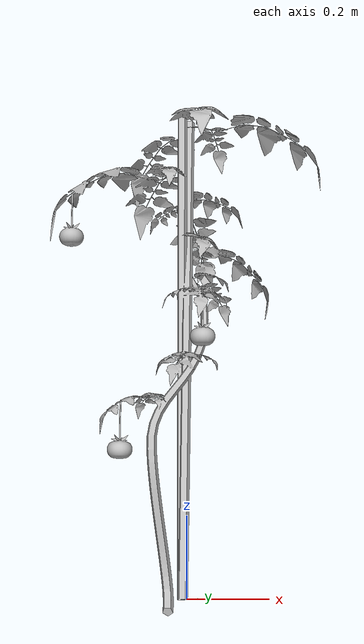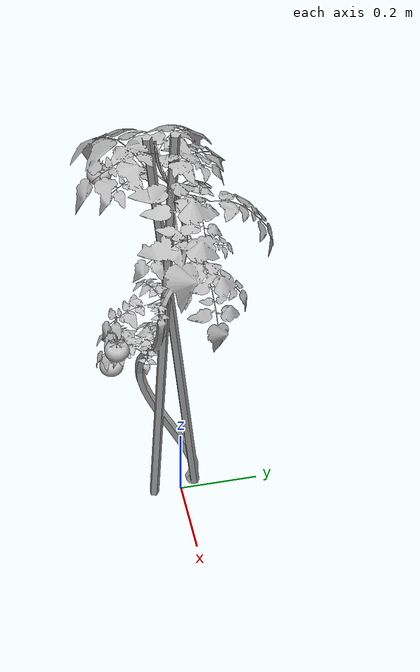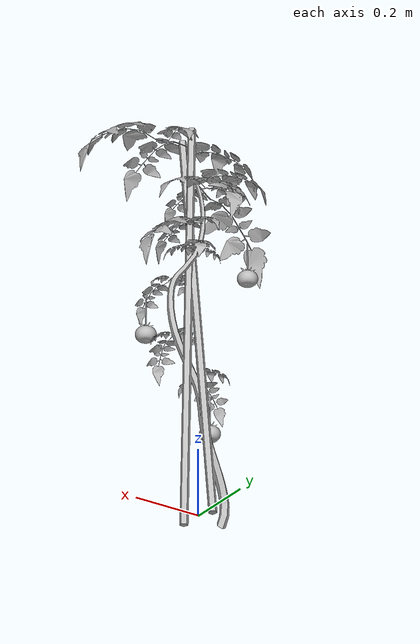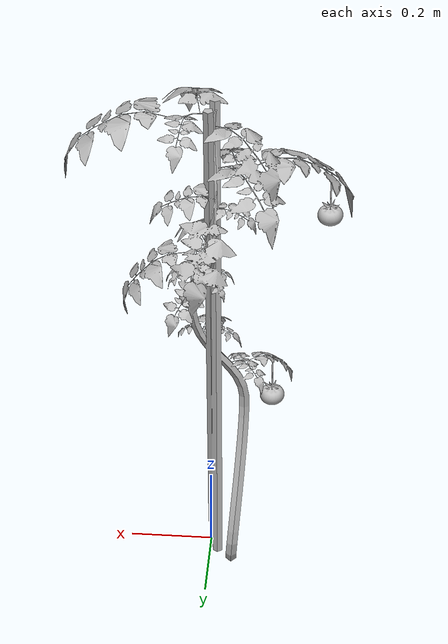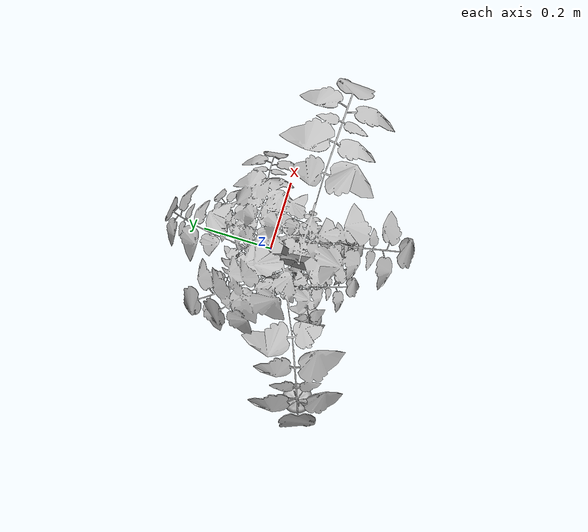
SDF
<?xml version="1.0"?>
<sdf version="1.6">
    <model name="task_2">
  <static>false</static>
      <link name="tomato_plant_link">

        <inertial>
          <pose>0 0 0 0 0 0</pose>
          <mass>20</mass>
          <inertia>
            <ixx>0.2006</ixx>
            <ixy>0</ixy>
            <ixz>0</ixz>
            <iyy>0.2006</iyy>
            <iyz>0</iyz>
            <izz>0.4</izz>
          </inertia>
        </inertial>

        <visual name="visual">
          <pose>0 0 0 0 0 0</pose>
          <geometry>
            <mesh><uri>model://tomato_plant/meshes/tomato_plant.obj</uri></mesh>
          </geometry>
        </visual>
        <collision name="collision">
          <pose>0 0 0.01 0 0 0</pose>
       <geometry>
          <cylinder>
            <radius>0.2</radius>
            <length>0.02</length>
          </cylinder>
        </geometry>
        </collision>
      </link>

<!-- tomato link -->

      <link name="t_link_2">
        <pose>0.062027 -0.170581 0.614534 0 0 0</pose>
        <inertial>
          <mass>0.001</mass>
          <inertia>
            <ixx>3.6e-03</ixx>
            <ixy>0</ixy>
            <ixz>0</ixz>
            <iyy>3.6e-03</iyy>
            <iyz>0</iyz>
            <izz>3.6e-03</izz>
          </inertia>
        </inertial>

      <surface>
        <friction>
          <ode>
            <mu>100000</mu>
            <mu2>100000</mu2>
          </ode>
        </friction>
      </surface>

        <collision name="collision">
          <geometry>
            <sphere><radius>0.02</radius></sphere>
          </geometry>
        </collision>
        <visual name="visual">
          <geometry>
            <mesh><uri>model://red_tomato/meshes/red_tomato.obj</uri></mesh>
          </geometry>
        </visual>
      </link>
      <joint name="t_joint_2" type="fixed">
        <parent>tomato_plant_link</parent>
        <child>t_link_2</child>
        <axis>
          <xyz>0 0 1</xyz>
          <use_parent_model_frame>true</use_parent_model_frame>
        </axis>
        <sensor name="force_torque" type="force_torque">
          <always_on>true</always_on>
          <update_rate>100</update_rate>
          <plugin name="breakable_2" filename="libBreakableJointPlugin.so">
            <breaking_force_N>10</breaking_force_N>
          </plugin>
        </sensor>
      </joint>

      <link name="t_link_7">
        <pose>-0.14 -0.15 0.35 0 0 0</pose>
        <inertial>
          <mass>0.001</mass>
          <inertia>
            <ixx>3.6e-03</ixx>
            <ixy>0</ixy>
            <ixz>0</ixz>
            <iyy>3.6e-03</iyy>
            <iyz>0</iyz>
            <izz>3.6e-03</izz>
          </inertia>
        </inertial>

      <surface>
        <friction>
          <ode>
            <mu>100000</mu>
            <mu2>100000</mu2>
          </ode>
        </friction>
      </surface>
        <collision name="collision">
          <geometry>
            <sphere><radius>0.02</radius></sphere>
          </geometry>
        </collision>
        <visual name="visual">
          <geometry>
            <mesh><uri>model://red_tomato/meshes/red_tomato.obj</uri></mesh>
          </geometry>
        </visual>
      </link>
      <joint name="t_joint_7" type="fixed">
        <parent>tomato_plant_link</parent>
        <child>t_link_7</child>
        <axis>
          <xyz>0 0 1</xyz>
          <use_parent_model_frame>true</use_parent_model_frame>
        </axis>
        <sensor name="force_torque" type="force_torque">
          <always_on>true</always_on>
          <update_rate>100</update_rate>
          <plugin name="breakable_7" filename="libBreakableJointPlugin.so">
            <breaking_force_N>10</breaking_force_N>
          </plugin>
        </sensor>
      </joint>

      <link name="t_link_9">
        <pose>-0.27 -0.146 0.885 0 0 0</pose>
        <inertial>
          <mass>0.001</mass>
          <inertia>
            <ixx>3.6e-03</ixx>
            <ixy>0</ixy>
            <ixz>0</ixz>
            <iyy>3.6e-03</iyy>
            <iyz>0</iyz>
            <izz>3.6e-03</izz>
          </inertia>
        </inertial>

      <surface>
        <friction>
          <ode>
            <mu>100000</mu>
            <mu2>100000</mu2>
          </ode>
        </friction>
      </surface>
        <collision name="collision">
          <geometry>
            <sphere><radius>0.02</radius></sphere>
          </geometry>
        </collision>
        <visual name="visual">
          <geometry>
            <mesh><uri>model://red_tomato/meshes/red_tomato.obj</uri></mesh>
          </geometry>
        </visual>
      </link>
      <joint name="t_joint_9" type="fixed">
        <parent>tomato_plant_link</parent>
        <child>t_link_9</child>
        <axis>
          <xyz>0 0 1</xyz>
          <use_parent_model_frame>true</use_parent_model_frame>
        </axis>
        <sensor name="force_torque" type="force_torque">
          <always_on>true</always_on>
          <update_rate>100</update_rate>
          <plugin name="breakable_9" filename="libBreakableJointPlugin.so">
            <breaking_force_N>10</breaking_force_N>
          </plugin>
        </sensor>
      </joint>
    </model>
</sdf>
